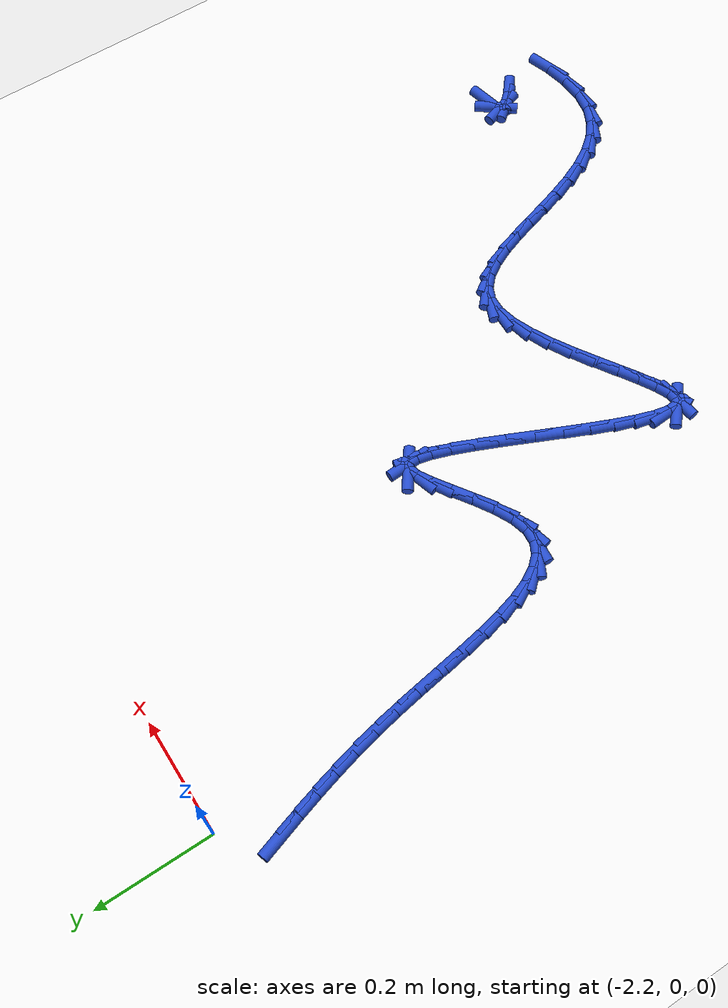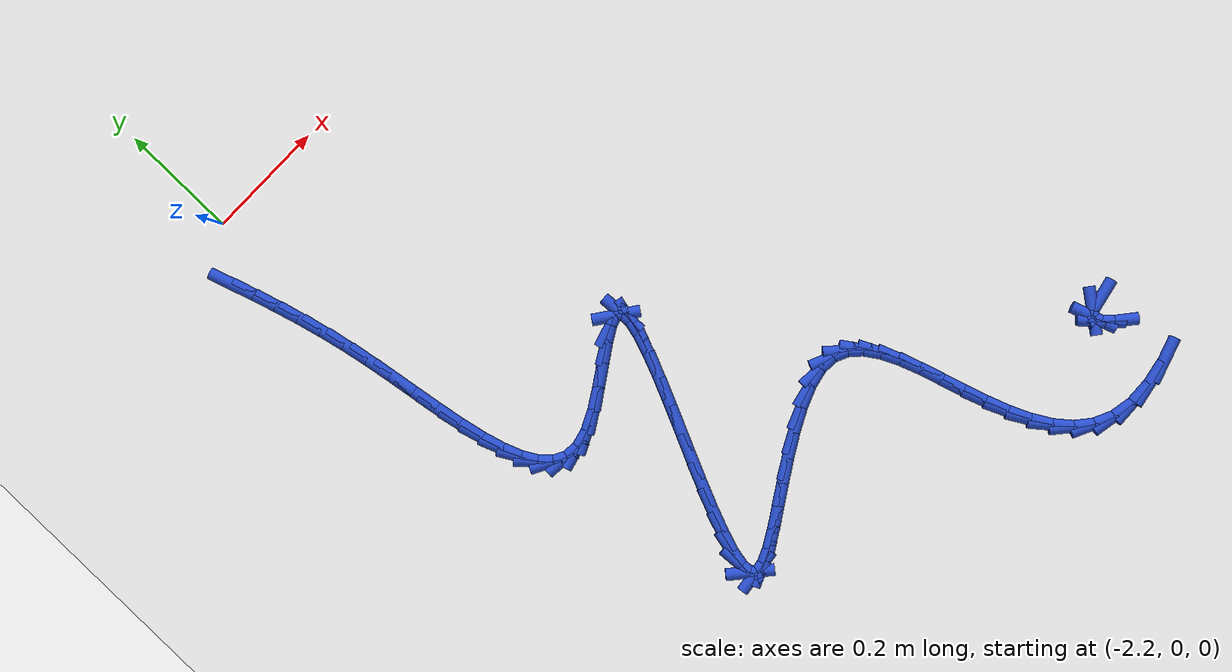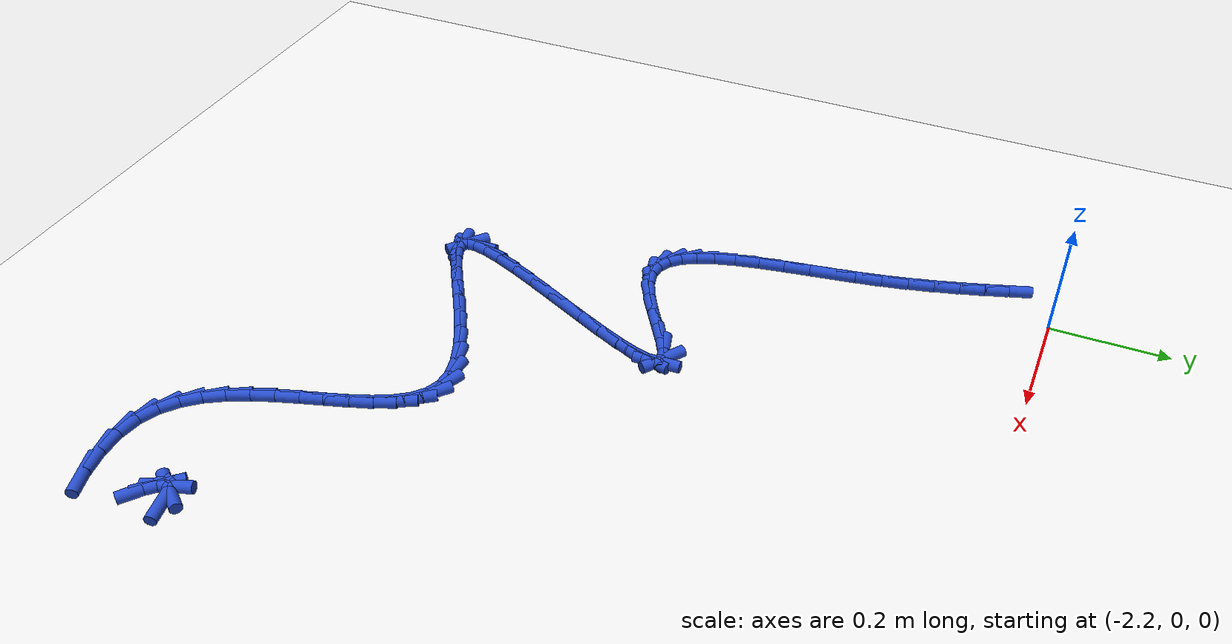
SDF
<sdf version="1.6">
 <world name="default">
  <model name="ground_plane">
   <static>1</static>
   <link name="link">
    <collision name="collision">
     <geometry><plane><normal>0 0 1</normal><size>100 100</size></plane></geometry>
     <surface><friction><ode><mu>100</mu><mu2>50</mu2></ode></friction></surface>
    </collision>
    <visual name="visual">
     <cast_shadows>0</cast_shadows>
     <geometry><plane><normal>0 0 1</normal><size>100 100</size></plane></geometry>
     <material>
      <script><uri>file://media/materials/scripts/gazebo.material</uri><name>Gazebo/WhiteGlow</name></script>
     </material>
    </visual>
   </link>
  </model>
  <model name="line">
   <link name="link_142">
    <pose>-2.258330392609804 -0.0805157189418933 0.01 0 1.57 -1.2567428035646973</pose>
    <collision name="collision">
     <geometry><cylinder><radius>0.01</radius><length>0.08</length></cylinder></geometry>
    </collision>
    <visual name="visual">
     <material>
      <script><name>Gazebo/Blue</name><uri>file://media/materials/scripts/gazebo.material</uri></script>
     </material>
     <geometry><cylinder><radius>0.01</radius><length>0.08</length></cylinder></geometry>
    </visual>
   </link>
   <link name="link_143">
    <pose>-2.245910329866111 -0.11875449936239896 0.01 0 1.57 -1.2734046634583882</pose>
    <collision name="collision">
     <geometry><cylinder><radius>0.01</radius><length>0.08</length></cylinder></geometry>
    </collision>
    <visual name="visual">
     <material>
      <script><name>Gazebo/Blue</name><uri>file://media/materials/scripts/gazebo.material</uri></script>
     </material>
     <geometry><cylinder><radius>0.01</radius><length>0.08</length></cylinder></geometry>
    </visual>
   </link>
   <link name="link_144">
    <pose>-2.233819231941287 -0.15820592653672694 0.01 0 1.57 -1.2943302570096151</pose>
    <collision name="collision">
     <geometry><cylinder><radius>0.01</radius><length>0.08</length></cylinder></geometry>
    </collision>
    <visual name="visual">
     <material>
      <script><name>Gazebo/Blue</name><uri>file://media/materials/scripts/gazebo.material</uri></script>
     </material>
     <geometry><cylinder><radius>0.01</radius><length>0.08</length></cylinder></geometry>
    </visual>
   </link>
   <link name="link_145">
    <pose>-2.2222730210303907 -0.1988999927530592 0.01 0 1.57 -1.3192412410076835</pose>
    <collision name="collision">
     <geometry><cylinder><radius>0.01</radius><length>0.08</length></cylinder></geometry>
    </collision>
    <visual name="visual">
     <material>
      <script><name>Gazebo/Blue</name><uri>file://media/materials/scripts/gazebo.material</uri></script>
     </material>
     <geometry><cylinder><radius>0.01</radius><length>0.08</length></cylinder></geometry>
    </visual>
   </link>
   <link name="link_146">
    <pose>-2.211487619328482 -0.24086669029957802 0.01 0 1.57 -1.3478750470857845</pose>
    <collision name="collision">
     <geometry><cylinder><radius>0.01</radius><length>0.08</length></cylinder></geometry>
    </collision>
    <visual name="visual">
     <material>
      <script><name>Gazebo/Blue</name><uri>file://media/materials/scripts/gazebo.material</uri></script>
     </material>
     <geometry><cylinder><radius>0.01</radius><length>0.08</length></cylinder></geometry>
    </visual>
   </link>
   <link name="link_147">
    <pose>-2.2016789490306183 -0.2841360114644652 0.01 0 1.57 -1.3793930356127007</pose>
    <collision name="collision">
     <geometry><cylinder><radius>0.01</radius><length>0.08</length></cylinder></geometry>
    </collision>
    <visual name="visual">
     <material>
      <script><name>Gazebo/Blue</name><uri>file://media/materials/scripts/gazebo.material</uri></script>
     </material>
     <geometry><cylinder><radius>0.01</radius><length>0.08</length></cylinder></geometry>
    </visual>
   </link>
   <link name="link_148">
    <pose>-2.193041842151855 -0.3287087782978045 0.01 0 1.57 -1.404123798073319</pose>
    <collision name="collision">
     <geometry><cylinder><radius>0.01</radius><length>0.08</length></cylinder></geometry>
    </collision>
    <visual name="visual">
     <material>
      <script><name>Gazebo/Blue</name><uri>file://media/materials/scripts/gazebo.material</uri></script>
     </material>
     <geometry><cylinder><radius>0.01</radius><length>0.08</length></cylinder></geometry>
    </visual>
   </link>
   <link name="link_149">
    <pose>-2.1854082396205055 -0.37408389113061696 0.01 0 1.57 -1.4150873553973278</pose>
    <collision name="collision">
     <geometry><cylinder><radius>0.01</radius><length>0.08</length></cylinder></geometry>
    </collision>
    <visual name="visual">
     <material>
      <script><name>Gazebo/Blue</name><uri>file://media/materials/scripts/gazebo.material</uri></script>
     </material>
     <geometry><cylinder><radius>0.01</radius><length>0.08</length></cylinder></geometry>
    </visual>
   </link>
   <link name="link_150">
    <pose>-2.178304357904546 -0.41933739684752636 0.01 0 1.57 -1.4124424878021338</pose>
    <collision name="collision">
     <geometry><cylinder><radius>0.01</radius><length>0.08</length></cylinder></geometry>
    </collision>
    <visual name="visual">
     <material>
      <script><name>Gazebo/Blue</name><uri>file://media/materials/scripts/gazebo.material</uri></script>
     </material>
     <geometry><cylinder><radius>0.01</radius><length>0.08</length></cylinder></geometry>
    </visual>
   </link>
   <link name="link_151">
    <pose>-2.1712468620364067 -0.4635321315569134 0.01 0 1.57 -1.395030458937956</pose>
    <collision name="collision">
     <geometry><cylinder><radius>0.01</radius><length>0.08</length></cylinder></geometry>
    </collision>
    <visual name="visual">
     <material>
      <script><name>Gazebo/Blue</name><uri>file://media/materials/scripts/gazebo.material</uri></script>
     </material>
     <geometry><cylinder><radius>0.01</radius><length>0.08</length></cylinder></geometry>
    </visual>
   </link>
   <link name="link_152">
    <pose>-2.1637524170485185 -0.5057309313671574 0.01 0 1.57 -1.3596871595470597</pose>
    <collision name="collision">
     <geometry><cylinder><radius>0.01</radius><length>0.08</length></cylinder></geometry>
    </collision>
    <visual name="visual">
     <material>
      <script><name>Gazebo/Blue</name><uri>file://media/materials/scripts/gazebo.material</uri></script>
     </material>
     <geometry><cylinder><radius>0.01</radius><length>0.08</length></cylinder></geometry>
    </visual>
   </link>
   <link name="link_153">
    <pose>-2.155337687973313 -0.5449966323866418 0.01 0 1.57 -1.3002093159605634</pose>
    <collision name="collision">
     <geometry><cylinder><radius>0.01</radius><length>0.08</length></cylinder></geometry>
    </collision>
    <visual name="visual">
     <material>
      <script><name>Gazebo/Blue</name><uri>file://media/materials/scripts/gazebo.material</uri></script>
     </material>
     <geometry><cylinder><radius>0.01</radius><length>0.08</length></cylinder></geometry>
    </visual>
   </link>
   <link name="link_154">
    <pose>-2.1455193398432213 -0.5803920707237463 0.01 0 1.57 -1.2053129350836929</pose>
    <collision name="collision">
     <geometry><cylinder><radius>0.01</radius><length>0.08</length></cylinder></geometry>
    </collision>
    <visual name="visual">
     <material>
      <script><name>Gazebo/Blue</name><uri>file://media/materials/scripts/gazebo.material</uri></script>
     </material>
     <geometry><cylinder><radius>0.01</radius><length>0.08</length></cylinder></geometry>
    </visual>
   </link>
   <link name="link_155">
    <pose>-2.1338140376906733 -0.6109800824868513 0.01 0 1.57 -1.0553188495620216</pose>
    <collision name="collision">
     <geometry><cylinder><radius>0.01</radius><length>0.08</length></cylinder></geometry>
    </collision>
    <visual name="visual">
     <material>
      <script><name>Gazebo/Blue</name><uri>file://media/materials/scripts/gazebo.material</uri></script>
     </material>
     <geometry><cylinder><radius>0.01</radius><length>0.08</length></cylinder></geometry>
    </visual>
   </link>
   <link name="link_156">
    <pose>-2.1197384465481006 -0.6358235037843377 0.01 0 1.57 -0.8205054444300315</pose>
    <collision name="collision">
     <geometry><cylinder><radius>0.01</radius><length>0.08</length></cylinder></geometry>
    </collision>
    <visual name="visual">
     <material>
      <script><name>Gazebo/Blue</name><uri>file://media/materials/scripts/gazebo.material</uri></script>
     </material>
     <geometry><cylinder><radius>0.01</radius><length>0.08</length></cylinder></geometry>
    </visual>
   </link>
   <link name="link_157">
    <pose>-2.102809231447935 -0.6539851707245865 0.01 0 1.57 -0.47968777615533</pose>
    <collision name="collision">
     <geometry><cylinder><radius>0.01</radius><length>0.08</length></cylinder></geometry>
    </collision>
    <visual name="visual">
     <material>
      <script><name>Gazebo/Blue</name><uri>file://media/materials/scripts/gazebo.material</uri></script>
     </material>
     <geometry><cylinder><radius>0.01</radius><length>0.08</length></cylinder></geometry>
    </visual>
   </link>
   <link name="link_158">
    <pose>-2.0825430574226065 -0.6645279194159778 0.01 0 1.57 -0.08229432919419949</pose>
    <collision name="collision">
     <geometry><cylinder><radius>0.01</radius><length>0.08</length></cylinder></geometry>
    </collision>
    <visual name="visual">
     <material>
      <script><name>Gazebo/Blue</name><uri>file://media/materials/scripts/gazebo.material</uri></script>
     </material>
     <geometry><cylinder><radius>0.01</radius><length>0.08</length></cylinder></geometry>
    </visual>
   </link>
   <link name="link_159">
    <pose>-2.0584565895045475 -0.6665145859668931 0.01 0 1.57 0.25579445920050164</pose>
    <collision name="collision">
     <geometry><cylinder><radius>0.01</radius><length>0.08</length></cylinder></geometry>
    </collision>
    <visual name="visual">
     <material>
      <script><name>Gazebo/Blue</name><uri>file://media/materials/scripts/gazebo.material</uri></script>
     </material>
     <geometry><cylinder><radius>0.01</radius><length>0.08</length></cylinder></geometry>
    </visual>
   </link>
   <link name="link_160">
    <pose>-2.030124560331579 -0.6591050976141642 0.01 0 1.57 0.4549603787045884</pose>
    <collision name="collision">
     <geometry><cylinder><radius>0.01</radius><length>0.08</length></cylinder></geometry>
    </collision>
    <visual name="visual">
     <material>
      <script><name>Gazebo/Blue</name><uri>file://media/materials/scripts/gazebo.material</uri></script>
     </material>
     <geometry><cylinder><radius>0.01</radius><length>0.08</length></cylinder></geometry>
    </visual>
   </link>
   <link name="link_161">
    <pose>-1.9983907793274278 -0.6435813237068222 0.01 0 1.57 0.5505686501416193</pose>
    <collision name="collision">
     <geometry><cylinder><radius>0.01</radius><length>0.08</length></cylinder></geometry>
    </collision>
    <visual name="visual">
     <material>
      <script><name>Gazebo/Blue</name><uri>file://media/materials/scripts/gazebo.material</uri></script>
     </material>
     <geometry><cylinder><radius>0.01</radius><length>0.08</length></cylinder></geometry>
    </visual>
   </link>
   <link name="link_162">
    <pose>-1.9653322635404293 -0.6232871011760057 0.01 0 1.57 0.5908342665065566</pose>
    <collision name="collision">
     <geometry><cylinder><radius>0.01</radius><length>0.08</length></cylinder></geometry>
    </collision>
    <visual name="visual">
     <material>
      <script><name>Gazebo/Blue</name><uri>file://media/materials/scripts/gazebo.material</uri></script>
     </material>
     <geometry><cylinder><radius>0.01</radius><length>0.08</length></cylinder></geometry>
    </visual>
   </link>
   <link name="link_163">
    <pose>-1.9330769219433597 -0.6016513600842155 0.01 0 1.57 0.5879748384288861</pose>
    <collision name="collision">
     <geometry><cylinder><radius>0.01</radius><length>0.08</length></cylinder></geometry>
    </collision>
    <visual name="visual">
     <material>
      <script><name>Gazebo/Blue</name><uri>file://media/materials/scripts/gazebo.material</uri></script>
     </material>
     <geometry><cylinder><radius>0.01</radius><length>0.08</length></cylinder></geometry>
    </visual>
   </link>
   <link name="link_164">
    <pose>-1.9037526635090023 -0.582103030493954 0.01 0 1.57 0.5242917728994245</pose>
    <collision name="collision">
     <geometry><cylinder><radius>0.01</radius><length>0.08</length></cylinder></geometry>
    </collision>
    <visual name="visual">
     <material>
      <script><name>Gazebo/Blue</name><uri>file://media/materials/scripts/gazebo.material</uri></script>
     </material>
     <geometry><cylinder><radius>0.01</radius><length>0.08</length></cylinder></geometry>
    </visual>
   </link>
   <link name="link_165">
    <pose>-1.8794873972101342 -0.5680710424677218 0.01 0 1.57 0.2895619419060579</pose>
    <collision name="collision">
     <geometry><cylinder><radius>0.01</radius><length>0.08</length></cylinder></geometry>
    </collision>
    <visual name="visual">
     <material>
      <script><name>Gazebo/Blue</name><uri>file://media/materials/scripts/gazebo.material</uri></script>
     </material>
     <geometry><cylinder><radius>0.01</radius><length>0.08</length></cylinder></geometry>
    </visual>
   </link>
   <link name="link_166">
    <pose>-1.8624077541298285 -0.5629824056564063 0.01 0 1.57 -0.6177132051004821</pose>
    <collision name="collision">
     <geometry><cylinder><radius>0.01</radius><length>0.08</length></cylinder></geometry>
    </collision>
    <visual name="visual">
     <material>
      <script><name>Gazebo/Blue</name><uri>file://media/materials/scripts/gazebo.material</uri></script>
     </material>
     <geometry><cylinder><radius>0.01</radius><length>0.08</length></cylinder></geometry>
    </visual>
   </link>
   <link name="link_167">
    <pose>-1.8538436737253015 -0.5690668621826197 0.01 0 1.57 -1.5170619736052466</pose>
    <collision name="collision">
     <geometry><cylinder><radius>0.01</radius><length>0.08</length></cylinder></geometry>
    </collision>
    <visual name="visual">
     <material>
      <script><name>Gazebo/Blue</name><uri>file://media/materials/scripts/gazebo.material</uri></script>
     </material>
     <geometry><cylinder><radius>0.01</radius><length>0.08</length></cylinder></geometry>
    </visual>
   </link>
   <link name="link_168">
    <pose>-1.8529697442099762 -0.5853150940703462 0.01 0 1.57 1.348091533684068</pose>
    <collision name="collision">
     <geometry><cylinder><radius>0.01</radius><length>0.08</length></cylinder></geometry>
    </collision>
    <visual name="visual">
     <material>
      <script><name>Gazebo/Blue</name><uri>file://media/materials/scripts/gazebo.material</uri></script>
     </material>
     <geometry><cylinder><radius>0.01</radius><length>0.08</length></cylinder></geometry>
    </visual>
   </link>
   <link name="link_169">
    <pose>-1.8585996390088966 -0.6101754008927223 0.01 0 1.57 1.2404104219623284</pose>
    <collision name="collision">
     <geometry><cylinder><radius>0.01</radius><length>0.08</length></cylinder></geometry>
    </collision>
    <visual name="visual">
     <material>
      <script><name>Gazebo/Blue</name><uri>file://media/materials/scripts/gazebo.material</uri></script>
     </material>
     <geometry><cylinder><radius>0.01</radius><length>0.08</length></cylinder></geometry>
    </visual>
   </link>
   <link name="link_170">
    <pose>-1.8695470315471059 -0.6420960822228868 0.01 0 1.57 1.187832071089361</pose>
    <collision name="collision">
     <geometry><cylinder><radius>0.01</radius><length>0.08</length></cylinder></geometry>
    </collision>
    <visual name="visual">
     <material>
      <script><name>Gazebo/Blue</name><uri>file://media/materials/scripts/gazebo.material</uri></script>
     </material>
     <geometry><cylinder><radius>0.01</radius><length>0.08</length></cylinder></geometry>
    </visual>
   </link>
   <link name="link_171">
    <pose>-1.884625595249648 -0.6795254376339767 0.01 0 1.57 1.1600726712068825</pose>
    <collision name="collision">
     <geometry><cylinder><radius>0.01</radius><length>0.08</length></cylinder></geometry>
    </collision>
    <visual name="visual">
     <material>
      <script><name>Gazebo/Blue</name><uri>file://media/materials/scripts/gazebo.material</uri></script>
     </material>
     <geometry><cylinder><radius>0.01</radius><length>0.08</length></cylinder></geometry>
    </visual>
   </link>
   <link name="link_172">
    <pose>-1.9026490035415675 -0.720911766699129 0.01 0 1.57 1.1465056908771862</pose>
    <collision name="collision">
     <geometry><cylinder><radius>0.01</radius><length>0.08</length></cylinder></geometry>
    </collision>
    <visual name="visual">
     <material>
      <script><name>Gazebo/Blue</name><uri>file://media/materials/scripts/gazebo.material</uri></script>
     </material>
     <geometry><cylinder><radius>0.01</radius><length>0.08</length></cylinder></geometry>
    </visual>
   </link>
   <link name="link_173">
    <pose>-1.9224309298479076 -0.7647033689914816 0.01 0 1.57 1.143039712170791</pose>
    <collision name="collision">
     <geometry><cylinder><radius>0.01</radius><length>0.08</length></cylinder></geometry>
    </collision>
    <visual name="visual">
     <material>
      <script><name>Gazebo/Blue</name><uri>file://media/materials/scripts/gazebo.material</uri></script>
     </material>
     <geometry><cylinder><radius>0.01</radius><length>0.08</length></cylinder></geometry>
    </visual>
   </link>
   <link name="link_174">
    <pose>-1.9427850475937116 -0.8093485440841711 0.01 0 1.57 1.1486274038163742</pose>
    <collision name="collision">
     <geometry><cylinder><radius>0.01</radius><length>0.08</length></cylinder></geometry>
    </collision>
    <visual name="visual">
     <material>
      <script><name>Gazebo/Blue</name><uri>file://media/materials/scripts/gazebo.material</uri></script>
     </material>
     <geometry><cylinder><radius>0.01</radius><length>0.08</length></cylinder></geometry>
    </visual>
   </link>
   <link name="link_175">
    <pose>-1.9625250302040231 -0.8532955915503351 0.01 0 1.57 1.164501621773512</pose>
    <collision name="collision">
     <geometry><cylinder><radius>0.01</radius><length>0.08</length></cylinder></geometry>
    </collision>
    <visual name="visual">
     <material>
      <script><name>Gazebo/Blue</name><uri>file://media/materials/scripts/gazebo.material</uri></script>
     </material>
     <geometry><cylinder><radius>0.01</radius><length>0.08</length></cylinder></geometry>
    </visual>
   </link>
   <link name="link_176">
    <pose>-1.9804645511038863 -0.894992810963111 0.01 0 1.57 1.1949744829680127</pose>
    <collision name="collision">
     <geometry><cylinder><radius>0.01</radius><length>0.08</length></cylinder></geometry>
    </collision>
    <visual name="visual">
     <material>
      <script><name>Gazebo/Blue</name><uri>file://media/materials/scripts/gazebo.material</uri></script>
     </material>
     <geometry><cylinder><radius>0.01</radius><length>0.08</length></cylinder></geometry>
    </visual>
   </link>
   <link name="link_177">
    <pose>-1.9954172837183455 -0.9328885018956362 0.01 0 1.57 1.2509239584610623</pose>
    <collision name="collision">
     <geometry><cylinder><radius>0.01</radius><length>0.08</length></cylinder></geometry>
    </collision>
    <visual name="visual">
     <material>
      <script><name>Gazebo/Blue</name><uri>file://media/materials/scripts/gazebo.material</uri></script>
     </material>
     <geometry><cylinder><radius>0.01</radius><length>0.08</length></cylinder></geometry>
    </visual>
   </link>
   <link name="link_178">
    <pose>-2.0061969014724426 -0.965430963921048 0.01 0 1.57 1.362448637224916</pose>
    <collision name="collision">
     <geometry><cylinder><radius>0.01</radius><length>0.08</length></cylinder></geometry>
    </collision>
    <visual name="visual">
     <material>
      <script><name>Gazebo/Blue</name><uri>file://media/materials/scripts/gazebo.material</uri></script>
     </material>
     <geometry><cylinder><radius>0.01</radius><length>0.08</length></cylinder></geometry>
    </visual>
   </link>
   <link name="link_179">
    <pose>-2.011617077791223 -0.9910684966124836 0.01 0 1.57 -1.5053756997973373</pose>
    <collision name="collision">
     <geometry><cylinder><radius>0.01</radius><length>0.08</length></cylinder></geometry>
    </collision>
    <visual name="visual">
     <material>
      <script><name>Gazebo/Blue</name><uri>file://media/materials/scripts/gazebo.material</uri></script>
     </material>
     <geometry><cylinder><radius>0.01</radius><length>0.08</length></cylinder></geometry>
    </visual>
   </link>
   <link name="link_180">
    <pose>-2.0104914860997294 -1.0082493995430803 0.01 0 1.57 -0.6944684516114775</pose>
    <collision name="collision">
     <geometry><cylinder><radius>0.01</radius><length>0.08</length></cylinder></geometry>
    </collision>
    <visual name="visual">
     <material>
      <script><name>Gazebo/Blue</name><uri>file://media/materials/scripts/gazebo.material</uri></script>
     </material>
     <geometry><cylinder><radius>0.01</radius><length>0.08</length></cylinder></geometry>
    </visual>
   </link>
   <link name="link_181">
    <pose>-2.001724465520262 -1.0155512426208644 0.01 0 1.57 0.1331604299470699</pose>
    <collision name="collision">
     <geometry><cylinder><radius>0.01</radius><length>0.08</length></cylinder></geometry>
    </collision>
    <visual name="visual">
     <material>
      <script><name>Gazebo/Blue</name><uri>file://media/materials/scripts/gazebo.material</uri></script>
     </material>
     <geometry><cylinder><radius>0.01</radius><length>0.08</length></cylinder></geometry>
    </visual>
   </link>
   <link name="link_182">
    <pose>-1.9855014113558787 -1.0133781141230962 0.01 0 1.57 0.4134430380606469</pose>
    <collision name="collision">
     <geometry><cylinder><radius>0.01</radius><length>0.08</length></cylinder></geometry>
    </collision>
    <visual name="visual">
     <material>
      <script><name>Gazebo/Blue</name><uri>file://media/materials/scripts/gazebo.material</uri></script>
     </material>
     <geometry><cylinder><radius>0.01</radius><length>0.08</length></cylinder></geometry>
    </visual>
   </link>
   <link name="link_183">
    <pose>-1.962956602629494 -1.0034870121920536 0.01 0 1.57 0.5187641623033594</pose>
    <collision name="collision">
     <geometry><cylinder><radius>0.01</radius><length>0.08</length></cylinder></geometry>
    </collision>
    <visual name="visual">
     <material>
      <script><name>Gazebo/Blue</name><uri>file://media/materials/scripts/gazebo.material</uri></script>
     </material>
     <geometry><cylinder><radius>0.01</radius><length>0.08</length></cylinder></geometry>
    </visual>
   </link>
   <link name="link_184">
    <pose>-1.9352466676588678 -0.9876668003933926 0.01 0 1.57 0.5616865664032875</pose>
    <collision name="collision">
     <geometry><cylinder><radius>0.01</radius><length>0.08</length></cylinder></geometry>
    </collision>
    <visual name="visual">
     <material>
      <script><name>Gazebo/Blue</name><uri>file://media/materials/scripts/gazebo.material</uri></script>
     </material>
     <geometry><cylinder><radius>0.01</radius><length>0.08</length></cylinder></geometry>
    </visual>
   </link>
   <link name="link_185">
    <pose>-1.9035282347617557 -0.9677063422927655 0.01 0 1.57 0.5731380995663389</pose>
    <collision name="collision">
     <geometry><cylinder><radius>0.01</radius><length>0.08</length></cylinder></geometry>
    </collision>
    <visual name="visual">
     <material>
      <script><name>Gazebo/Blue</name><uri>file://media/materials/scripts/gazebo.material</uri></script>
     </material>
     <geometry><cylinder><radius>0.01</radius><length>0.08</length></cylinder></geometry>
    </visual>
   </link>
   <link name="link_186">
    <pose>-1.8689579322559162 -0.9453945014558275 0.01 0 1.57 0.5627208666485106</pose>
    <collision name="collision">
     <geometry><cylinder><radius>0.01</radius><length>0.08</length></cylinder></geometry>
    </collision>
    <visual name="visual">
     <material>
      <script><name>Gazebo/Blue</name><uri>file://media/materials/scripts/gazebo.material</uri></script>
     </material>
     <geometry><cylinder><radius>0.01</radius><length>0.08</length></cylinder></geometry>
    </visual>
   </link>
   <link name="link_187">
    <pose>-1.8326923884591069 -0.9225201414482324 0.01 0 1.57 0.5316940224195607</pose>
    <collision name="collision">
     <geometry><cylinder><radius>0.01</radius><length>0.08</length></cylinder></geometry>
    </collision>
    <visual name="visual">
     <material>
      <script><name>Gazebo/Blue</name><uri>file://media/materials/scripts/gazebo.material</uri></script>
     </material>
     <geometry><cylinder><radius>0.01</radius><length>0.08</length></cylinder></geometry>
    </visual>
   </link>
   <link name="link_188">
    <pose>-1.7958882316890852 -0.9008721258356344 0.01 0 1.57 0.4755087395105329</pose>
    <collision name="collision">
     <geometry><cylinder><radius>0.01</radius><length>0.08</length></cylinder></geometry>
    </collision>
    <visual name="visual">
     <material>
      <script><name>Gazebo/Blue</name><uri>file://media/materials/scripts/gazebo.material</uri></script>
     </material>
     <geometry><cylinder><radius>0.01</radius><length>0.08</length></cylinder></geometry>
    </visual>
   </link>
   <link name="link_189">
    <pose>-1.7597020902636091 -0.8822393181836881 0.01 0 1.57 0.3821120896966196</pose>
    <collision name="collision">
     <geometry><cylinder><radius>0.01</radius><length>0.08</length></cylinder></geometry>
    </collision>
    <visual name="visual">
     <material>
      <script><name>Gazebo/Blue</name><uri>file://media/materials/scripts/gazebo.material</uri></script>
     </material>
     <geometry><cylinder><radius>0.01</radius><length>0.08</length></cylinder></geometry>
    </visual>
   </link>
   <link name="link_190">
    <pose>-1.7252905925004365 -0.8684105820580473 0.01 0 1.57 0.22592806600941318</pose>
    <collision name="collision">
     <geometry><cylinder><radius>0.01</radius><length>0.08</length></cylinder></geometry>
    </collision>
    <visual name="visual">
     <material>
      <script><name>Gazebo/Blue</name><uri>file://media/materials/scripts/gazebo.material</uri></script>
     </material>
     <geometry><cylinder><radius>0.01</radius><length>0.08</length></cylinder></geometry>
    </visual>
   </link>
   <link name="link_191">
    <pose>-1.6938103667173243 -0.8611747810243664 0.01 0 1.57 -0.040457352178311735</pose>
    <collision name="collision">
     <geometry><cylinder><radius>0.01</radius><length>0.08</length></cylinder></geometry>
    </collision>
    <visual name="visual">
     <material>
      <script><name>Gazebo/Blue</name><uri>file://media/materials/scripts/gazebo.material</uri></script>
     </material>
     <geometry><cylinder><radius>0.01</radius><length>0.08</length></cylinder></geometry>
    </visual>
   </link>
   <link name="link_192">
    <pose>-1.6663953636003843 -0.8622845250018497 0.01 0 1.57 -0.40716315792848407</pose>
    <collision name="collision">
     <geometry><cylinder><radius>0.01</radius><length>0.08</length></cylinder></geometry>
    </collision>
    <visual name="visual">
     <material>
      <script><name>Gazebo/Blue</name><uri>file://media/materials/scripts/gazebo.material</uri></script>
     </material>
     <geometry><cylinder><radius>0.01</radius><length>0.08</length></cylinder></geometry>
    </visual>
   </link>
   <link name="link_193">
    <pose>-1.6433780016605244 -0.8722110527087676 0.01 0 1.57 -0.7403410080728594</pose>
    <collision name="collision">
     <geometry><cylinder><radius>0.01</radius><length>0.08</length></cylinder></geometry>
    </collision>
    <visual name="visual">
     <material>
      <script><name>Gazebo/Blue</name><uri>file://media/materials/scripts/gazebo.material</uri></script>
     </material>
     <geometry><cylinder><radius>0.01</radius><length>0.08</length></cylinder></geometry>
    </visual>
   </link>
   <link name="link_194">
    <pose>-1.624093565364997 -0.8898315322988588 0.01 0 1.57 -0.9765735204766163</pose>
    <collision name="collision">
     <geometry><cylinder><radius>0.01</radius><length>0.08</length></cylinder></geometry>
    </collision>
    <visual name="visual">
     <material>
      <script><name>Gazebo/Blue</name><uri>file://media/materials/scripts/gazebo.material</uri></script>
     </material>
     <geometry><cylinder><radius>0.01</radius><length>0.08</length></cylinder></geometry>
    </visual>
   </link>
   <link name="link_195">
    <pose>-1.60781495551583 -0.91392340214021 0.01 0 1.57 -1.1255961248144588</pose>
    <collision name="collision">
     <geometry><cylinder><radius>0.01</radius><length>0.08</length></cylinder></geometry>
    </collision>
    <visual name="visual">
     <material>
      <script><name>Gazebo/Blue</name><uri>file://media/materials/scripts/gazebo.material</uri></script>
     </material>
     <geometry><cylinder><radius>0.01</radius><length>0.08</length></cylinder></geometry>
    </visual>
   </link>
   <link name="link_196">
    <pose>-1.5938150729150504 -0.9432641006009074 0.01 0 1.57 -1.2137177119525508</pose>
    <collision name="collision">
     <geometry><cylinder><radius>0.01</radius><length>0.08</length></cylinder></geometry>
    </collision>
    <visual name="visual">
     <material>
      <script><name>Gazebo/Blue</name><uri>file://media/materials/scripts/gazebo.material</uri></script>
     </material>
     <geometry><cylinder><radius>0.01</radius><length>0.08</length></cylinder></geometry>
    </visual>
   </link>
   <link name="link_197">
    <pose>-1.5813668183646876 -0.9766310660490376 0.01 0 1.57 -1.2598622292789723</pose>
    <collision name="collision">
     <geometry><cylinder><radius>0.01</radius><length>0.08</length></cylinder></geometry>
    </collision>
    <visual name="visual">
     <material>
      <script><name>Gazebo/Blue</name><uri>file://media/materials/scripts/gazebo.material</uri></script>
     </material>
     <geometry><cylinder><radius>0.01</radius><length>0.08</length></cylinder></geometry>
    </visual>
   </link>
   <link name="link_198">
    <pose>-1.5697430926667684 -1.0128017368526876 0.01 0 1.57 -1.2744681044494308</pose>
    <collision name="collision">
     <geometry><cylinder><radius>0.01</radius><length>0.08</length></cylinder></geometry>
    </collision>
    <visual name="visual">
     <material>
      <script><name>Gazebo/Blue</name><uri>file://media/materials/scripts/gazebo.material</uri></script>
     </material>
     <geometry><cylinder><radius>0.01</radius><length>0.08</length></cylinder></geometry>
    </visual>
   </link>
   <link name="link_199">
    <pose>-1.5582167966233216 -1.050553551379944 0.01 0 1.57 -1.262030549709307</pose>
    <collision name="collision">
     <geometry><cylinder><radius>0.01</radius><length>0.08</length></cylinder></geometry>
    </collision>
    <visual name="visual">
     <material>
      <script><name>Gazebo/Blue</name><uri>file://media/materials/scripts/gazebo.material</uri></script>
     </material>
     <geometry><cylinder><radius>0.01</radius><length>0.08</length></cylinder></geometry>
    </visual>
   </link>
   <link name="link_200">
    <pose>-1.5460608310363744 -1.0886639479988933 0.01 0 1.57 -1.2227705136150506</pose>
    <collision name="collision">
     <geometry><cylinder><radius>0.01</radius><length>0.08</length></cylinder></geometry>
    </collision>
    <visual name="visual">
     <material>
      <script><name>Gazebo/Blue</name><uri>file://media/materials/scripts/gazebo.material</uri></script>
     </material>
     <geometry><cylinder><radius>0.01</radius><length>0.08</length></cylinder></geometry>
    </visual>
   </link>
   <link name="link_201">
    <pose>-1.5325480967079559 -1.1259103650776208 0.01 0 1.57 -1.1532849463650445</pose>
    <collision name="collision">
     <geometry><cylinder><radius>0.01</radius><length>0.08</length></cylinder></geometry>
    </collision>
    <visual name="visual">
     <material>
      <script><name>Gazebo/Blue</name><uri>file://media/materials/scripts/gazebo.material</uri></script>
     </material>
     <geometry><cylinder><radius>0.01</radius><length>0.08</length></cylinder></geometry>
    </visual>
   </link>
   <link name="link_202">
    <pose>-1.5169514944400937 -1.1610702409842155 0.01 0 1.57 -1.046761635894411</pose>
    <collision name="collision">
     <geometry><cylinder><radius>0.01</radius><length>0.08</length></cylinder></geometry>
    </collision>
    <visual name="visual">
     <material>
      <script><name>Gazebo/Blue</name><uri>file://media/materials/scripts/gazebo.material</uri></script>
     </material>
     <geometry><cylinder><radius>0.01</radius><length>0.08</length></cylinder></geometry>
    </visual>
   </link>
   <link name="link_203">
    <pose>-1.4985439250348151 -1.1929210140867632 0.01 0 1.57 -0.8940420710875039</pose>
    <collision name="collision">
     <geometry><cylinder><radius>0.01</radius><length>0.08</length></cylinder></geometry>
    </collision>
    <visual name="visual">
     <material>
      <script><name>Gazebo/Blue</name><uri>file://media/materials/scripts/gazebo.material</uri></script>
     </material>
     <geometry><cylinder><radius>0.01</radius><length>0.08</length></cylinder></geometry>
    </visual>
   </link>
   <link name="link_204">
    <pose>-1.4765982892941483 -1.2202401227533497 0.01 0 1.57 -0.6884585455793769</pose>
    <collision name="collision">
     <geometry><cylinder><radius>0.01</radius><length>0.08</length></cylinder></geometry>
    </collision>
    <visual name="visual">
     <material>
      <script><name>Gazebo/Blue</name><uri>file://media/materials/scripts/gazebo.material</uri></script>
     </material>
     <geometry><cylinder><radius>0.01</radius><length>0.08</length></cylinder></geometry>
    </visual>
   </link>
   <link name="link_205">
    <pose>-1.4503874880201224 -1.2418050053520626 0.01 0 1.57 -0.43732864627130147</pose>
    <collision name="collision">
     <geometry><cylinder><radius>0.01</radius><length>0.08</length></cylinder></geometry>
    </collision>
    <visual name="visual">
     <material>
      <script><name>Gazebo/Blue</name><uri>file://media/materials/scripts/gazebo.material</uri></script>
     </material>
     <geometry><cylinder><radius>0.01</radius><length>0.08</length></cylinder></geometry>
    </visual>
   </link>
   <link name="link_206">
    <pose>-1.4191844220147638 -1.2563931002509878 0.01 0 1.57 -0.1718543852904535</pose>
    <collision name="collision">
     <geometry><cylinder><radius>0.01</radius><length>0.08</length></cylinder></geometry>
    </collision>
    <visual name="visual">
     <material>
      <script><name>Gazebo/Blue</name><uri>file://media/materials/scripts/gazebo.material</uri></script>
     </material>
     <geometry><cylinder><radius>0.01</radius><length>0.08</length></cylinder></geometry>
    </visual>
   </link>
   <link name="link_207">
    <pose>-1.3822843513705187 -1.2627977148480027 0.01 0 1.57 0.046995116210648</pose>
    <collision name="collision">
     <geometry><cylinder><radius>0.01</radius><length>0.08</length></cylinder></geometry>
    </collision>
    <visual name="visual">
     <material>
      <script><name>Gazebo/Blue</name><uri>file://media/materials/scripts/gazebo.material</uri></script>
     </material>
     <geometry><cylinder><radius>0.01</radius><length>0.08</length></cylinder></geometry>
    </visual>
   </link>
   <link name="link_208">
    <pose>-1.3404146873093552 -1.260828595279199 0.01 0 1.57 0.20072380376318438</pose>
    <collision name="collision">
     <geometry><cylinder><radius>0.01</radius><length>0.08</length></cylinder></geometry>
    </collision>
    <visual name="visual">
     <material>
      <script><name>Gazebo/Blue</name><uri>file://media/materials/scripts/gazebo.material</uri></script>
     </material>
     <geometry><cylinder><radius>0.01</radius><length>0.08</length></cylinder></geometry>
    </visual>
   </link>
   <link name="link_209">
    <pose>-1.2965763956679328 -1.2519090946081624 0.01 0 1.57 0.32390055166529447</pose>
    <collision name="collision">
     <geometry><cylinder><radius>0.01</radius><length>0.08</length></cylinder></geometry>
    </collision>
    <visual name="visual">
     <material>
      <script><name>Gazebo/Blue</name><uri>file://media/materials/scripts/gazebo.material</uri></script>
     </material>
     <geometry><cylinder><radius>0.01</radius><length>0.08</length></cylinder></geometry>
    </visual>
   </link>
   <link name="link_219">
    <pose>-1.3014418440434203 -1.1089749882871487 0.01 0 1.57 0.21995875227701658</pose>
    <collision name="collision">
     <geometry><cylinder><radius>0.01</radius><length>0.08</length></cylinder></geometry>
    </collision>
    <visual name="visual">
     <material>
      <script><name>Gazebo/Blue</name><uri>file://media/materials/scripts/gazebo.material</uri></script>
     </material>
     <geometry><cylinder><radius>0.01</radius><length>0.08</length></cylinder></geometry>
    </visual>
   </link>
   <link name="link_220">
    <pose>-1.3197004343275793 -1.1130571729057428 0.01 0 1.57 0.9235668931412999</pose>
    <collision name="collision">
     <geometry><cylinder><radius>0.01</radius><length>0.08</length></cylinder></geometry>
    </collision>
    <visual name="visual">
     <material>
      <script><name>Gazebo/Blue</name><uri>file://media/materials/scripts/gazebo.material</uri></script>
     </material>
     <geometry><cylinder><radius>0.01</radius><length>0.08</length></cylinder></geometry>
    </visual>
   </link>
   <link name="link_221">
    <pose>-1.3261625033083047 -1.1216066714683424 0.01 0 1.57 -1.2423693583147717</pose>
    <collision name="collision">
     <geometry><cylinder><radius>0.01</radius><length>0.08</length></cylinder></geometry>
    </collision>
    <visual name="visual">
     <material>
      <script><name>Gazebo/Blue</name><uri>file://media/materials/scripts/gazebo.material</uri></script>
     </material>
     <geometry><cylinder><radius>0.01</radius><length>0.08</length></cylinder></geometry>
    </visual>
   </link>
   <link name="link_222">
    <pose>-1.321957655727647 -1.1339459896248028 0.01 0 1.57 -0.8438877738762749</pose>
    <collision name="collision">
     <geometry><cylinder><radius>0.01</radius><length>0.08</length></cylinder></geometry>
    </collision>
    <visual name="visual">
     <material>
      <script><name>Gazebo/Blue</name><uri>file://media/materials/scripts/gazebo.material</uri></script>
     </material>
     <geometry><cylinder><radius>0.01</radius><length>0.08</length></cylinder></geometry>
    </visual>
   </link>
   <link name="link_223">
    <pose>-1.308215496327658 -1.1493976330249784 0.01 0 1.57 -0.6793099030564966</pose>
    <collision name="collision">
     <geometry><cylinder><radius>0.01</radius><length>0.08</length></cylinder></geometry>
    </collision>
    <visual name="visual">
     <material>
      <script><name>Gazebo/Blue</name><uri>file://media/materials/scripts/gazebo.material</uri></script>
     </material>
     <geometry><cylinder><radius>0.01</radius><length>0.08</length></cylinder></geometry>
    </visual>
   </link>
  </model>
 </world>
</sdf>
